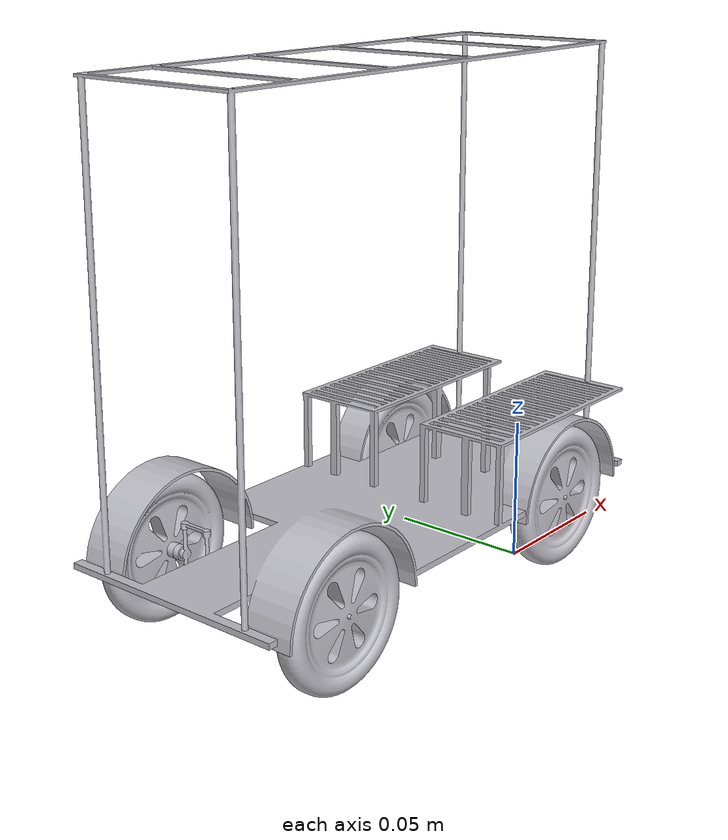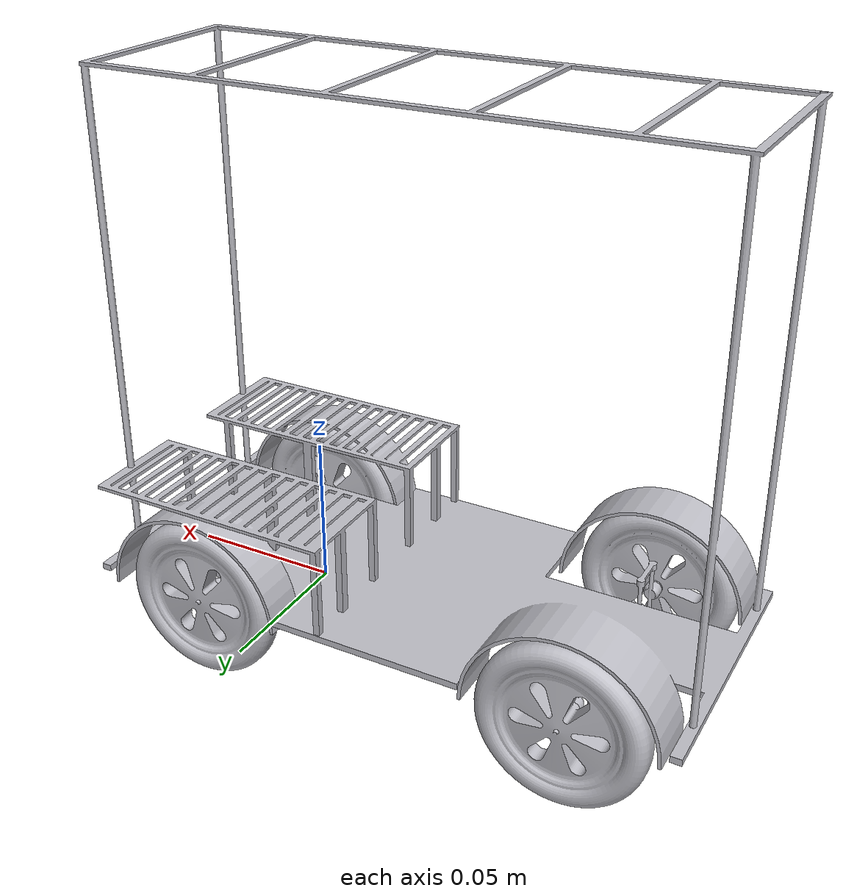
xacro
<?xml version="1.0" ?>
<robot name="Autimama" xmlns:xacro="http://www.ros.org/wiki/xacro">

<xacro:include filename="$(find Autimama_description)/urdf/materials.xacro" />
<xacro:include filename="$(find Autimama_description)/urdf/Autimama.trans" />
<xacro:include filename="$(find Autimama_description)/urdf/Autimama.gazebo" />
<link name="base_link">
  <inertial>
    <origin xyz="-0.4195547534585827 0.22272554711801903 0.5183555009387848" rpy="0 0 0"/>
    <mass value="114.59853782706756"/>
    <inertia ixx="32.948053" iyy="61.158942" izz="41.100389" ixy="0.102632" iyz="-0.034967" ixz="2.864246"/>
  </inertial>
  <visual>
    <origin xyz="0 0 0" rpy="0 0 0"/>
    <geometry>
      <mesh filename="package://Autimama_description/meshes/base_link.stl" scale="0.001 0.001 0.001"/>
    </geometry>
    <material name="silver"/>
  </visual>
  <collision>
    <origin xyz="0 0 0" rpy="0 0 0"/>
    <geometry>
      <mesh filename="package://Autimama_description/meshes/base_link.stl" scale="0.001 0.001 0.001"/>
    </geometry>
  </collision>
</link>

<link name="wheel3_1">
  <inertial>
    <origin xyz="-1.3959603981095192e-07 -0.04494836313818579 -4.357814130662163e-07" rpy="0 0 0"/>
    <mass value="19.301528013312776"/>
    <inertia ixx="0.275927" iyy="0.536625" izz="0.275927" ixy="-0.0" iyz="0.0" ixz="-0.0"/>
  </inertial>
  <visual>
    <origin xyz="-0.043639 0.09661 -0.252796" rpy="0 0 0"/>
    <geometry>
      <mesh filename="package://Autimama_description/meshes/wheel3_1.stl" scale="0.001 0.001 0.001"/>
    </geometry>
    <material name="silver"/>
  </visual>
  <collision>
    <origin xyz="-0.043639 0.09661 -0.252796" rpy="0 0 0"/>
    <geometry>
      <mesh filename="package://Autimama_description/meshes/wheel3_1.stl" scale="0.001 0.001 0.001"/>
    </geometry>
  </collision>
</link>

<link name="wheel4_1">
  <inertial>
    <origin xyz="-1.3193427806507119e-07 0.044948129030530914 -4.432851846147834e-07" rpy="0 0 0"/>
    <mass value="19.30152801331279"/>
    <inertia ixx="0.275927" iyy="0.536625" izz="0.275927" ixy="0.0" iyz="-0.0" ixz="-0.0"/>
  </inertial>
  <visual>
    <origin xyz="-0.043639 -0.54339 -0.252796" rpy="0 0 0"/>
    <geometry>
      <mesh filename="package://Autimama_description/meshes/wheel4_1.stl" scale="0.001 0.001 0.001"/>
    </geometry>
    <material name="silver"/>
  </visual>
  <collision>
    <origin xyz="-0.043639 -0.54339 -0.252796" rpy="0 0 0"/>
    <geometry>
      <mesh filename="package://Autimama_description/meshes/wheel4_1.stl" scale="0.001 0.001 0.001"/>
    </geometry>
  </collision>
</link>

<link name="wheel2_1">
  <inertial>
    <origin xyz="-1.3690663536181091e-07 0.0672954800029184 -4.334913943915275e-07" rpy="0 0 0"/>
    <mass value="19.53581228545425"/>
    <inertia ixx="0.276668" iyy="0.536716" izz="0.276668" ixy="-0.0" iyz="0.0" ixz="0.0"/>
  </inertial>
  <visual>
    <origin xyz="1.136361 -0.542437 -0.252796" rpy="0 0 0"/>
    <geometry>
      <mesh filename="package://Autimama_description/meshes/wheel2_1.stl" scale="0.001 0.001 0.001"/>
    </geometry>
    <material name="silver"/>
  </visual>
  <collision>
    <origin xyz="1.136361 -0.542437 -0.252796" rpy="0 0 0"/>
    <geometry>
      <mesh filename="package://Autimama_description/meshes/wheel2_1.stl" scale="0.001 0.001 0.001"/>
    </geometry>
  </collision>
</link>

<link name="wheel1_1">
  <inertial>
    <origin xyz="-1.3933370746066487e-07 -0.04494836313818579 -4.4256888215299384e-07" rpy="0 0 0"/>
    <mass value="19.3015280133128"/>
    <inertia ixx="0.275927" iyy="0.536625" izz="0.275927" ixy="-0.0" iyz="-0.0" ixz="-0.0"/>
  </inertial>
  <visual>
    <origin xyz="1.136361 0.09661 -0.252796" rpy="0 0 0"/>
    <geometry>
      <mesh filename="package://Autimama_description/meshes/wheel1_1.stl" scale="0.001 0.001 0.001"/>
    </geometry>
    <material name="silver"/>
  </visual>
  <collision>
    <origin xyz="1.136361 0.09661 -0.252796" rpy="0 0 0"/>
    <geometry>
      <mesh filename="package://Autimama_description/meshes/wheel1_1.stl" scale="0.001 0.001 0.001"/>
    </geometry>
  </collision>
</link>

<link name="wheel1_link_1">
  <inertial>
    <origin xyz="-1.355089531696052e-07 -0.011876851439479072 -0.09132946238565198" rpy="0 0 0"/>
    <mass value="0.6824187889856312"/>
    <inertia ixx="0.000711" iyy="0.000693" izz="0.000162" ixy="-0.0" iyz="1.1e-05" ixz="-0.0"/>
  </inertial>
  <visual>
    <origin xyz="1.136361 0.06361 -0.342796" rpy="0 0 0"/>
    <geometry>
      <mesh filename="package://Autimama_description/meshes/wheel1_link_1.stl" scale="0.001 0.001 0.001"/>
    </geometry>
    <material name="silver"/>
  </visual>
  <collision>
    <origin xyz="1.136361 0.06361 -0.342796" rpy="0 0 0"/>
    <geometry>
      <mesh filename="package://Autimama_description/meshes/wheel1_link_1.stl" scale="0.001 0.001 0.001"/>
    </geometry>
  </collision>
</link>

<link name="wheel2_link_1">
  <inertial>
    <origin xyz="-1.3550895072711455e-07 0.01206275012818847 -0.09138140441465087" rpy="0 0 0"/>
    <mass value="0.6567511226697027"/>
    <inertia ixx="0.000705" iyy="0.000683" izz="0.000156" ixy="0.0" iyz="-1.1e-05" ixz="0.0"/>
  </inertial>
  <visual>
    <origin xyz="1.136361 -0.509437 -0.342796" rpy="0 0 0"/>
    <geometry>
      <mesh filename="package://Autimama_description/meshes/wheel2_link_1.stl" scale="0.001 0.001 0.001"/>
    </geometry>
    <material name="silver"/>
  </visual>
  <collision>
    <origin xyz="1.136361 -0.509437 -0.342796" rpy="0 0 0"/>
    <geometry>
      <mesh filename="package://Autimama_description/meshes/wheel2_link_1.stl" scale="0.001 0.001 0.001"/>
    </geometry>
  </collision>
</link>

<joint name="wheel3_joint" type="continuous">
  <origin xyz="0.043639 -0.09661 0.252796" rpy="0 0 0"/>
  <parent link="base_link"/>
  <child link="wheel3_1"/>
  <axis xyz="0.0 -1.0 0.0"/>
</joint>

<joint name="wheel4_joint" type="continuous">
  <origin xyz="0.043639 0.54339 0.252796" rpy="0 0 0"/>
  <parent link="base_link"/>
  <child link="wheel4_1"/>
  <axis xyz="0.0 -1.0 0.0"/>
</joint>

<joint name="wheel2_joint" type="continuous">
  <origin xyz="0.0 0.033 -0.09" rpy="0 0 0"/>
  <parent link="wheel2_link_1"/>
  <child link="wheel2_1"/>
  <axis xyz="-0.0 -1.0 0.0"/>
</joint>

<joint name="wheel1_joint" type="continuous">
  <origin xyz="0.0 -0.033 -0.09" rpy="0 0 0"/>
  <parent link="wheel1_link_1"/>
  <child link="wheel1_1"/>
  <axis xyz="-0.0 -1.0 0.0"/>
</joint>

<joint name="wheel1_steering" type="revolute">
  <origin xyz="-1.136361 -0.06361 0.342796" rpy="0 0 0"/>
  <parent link="base_link"/>
  <child link="wheel1_link_1"/>
  <axis xyz="-0.0 0.0 1.0"/>
  <limit upper="0.523599" lower="-0.523599" effort="100" velocity="100"/>
</joint>

<joint name="wheel2_steering" type="revolute">
  <origin xyz="-1.136361 0.509437 0.342796" rpy="0 0 0"/>
  <parent link="base_link"/>
  <child link="wheel2_link_1"/>
  <axis xyz="0.0 -0.0 -1.0"/>
  <limit upper="0.523599" lower="-0.523599" effort="100" velocity="100"/>
</joint>

</robot>
